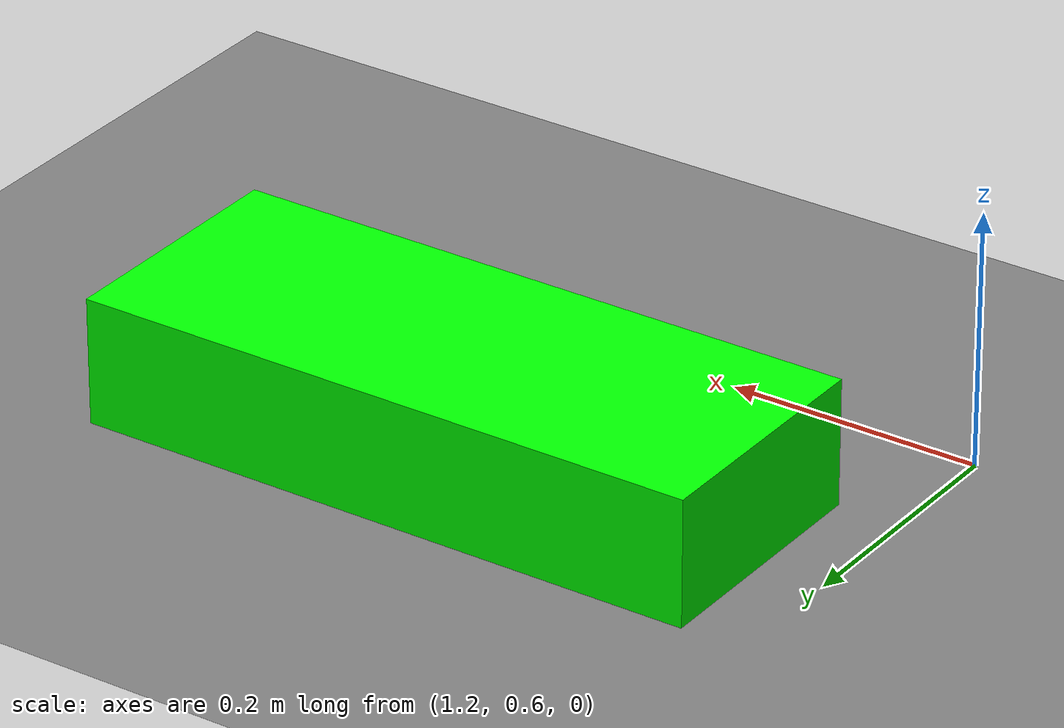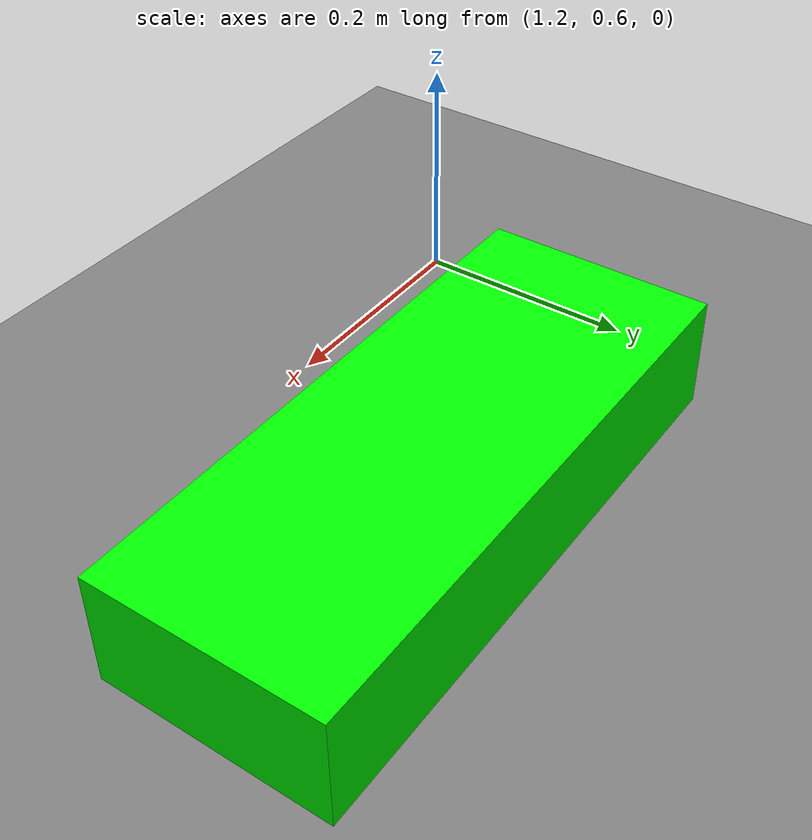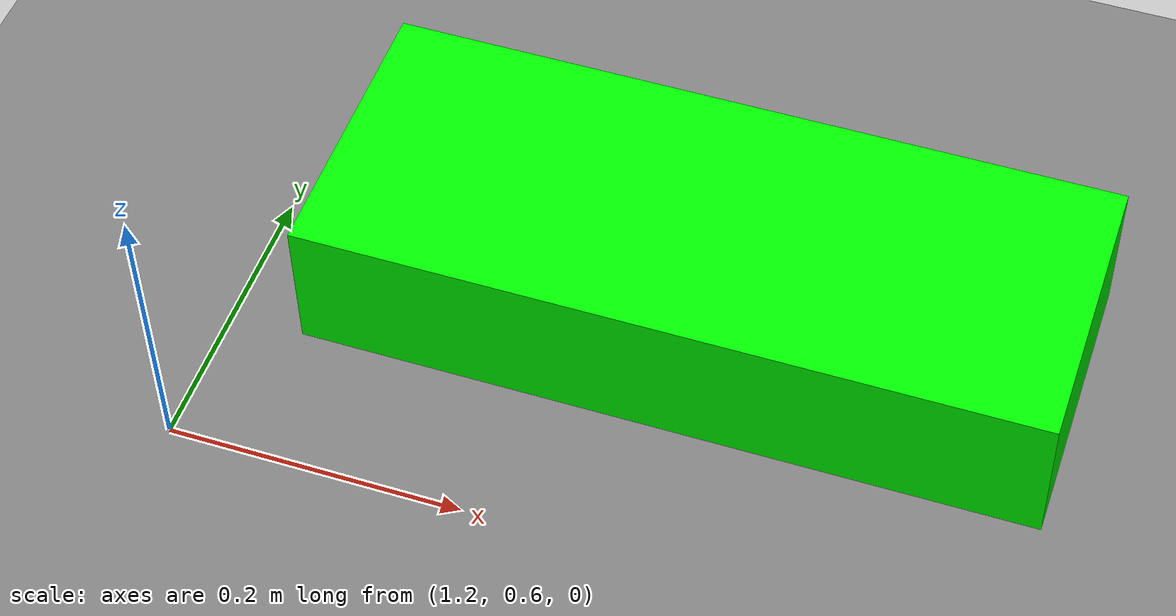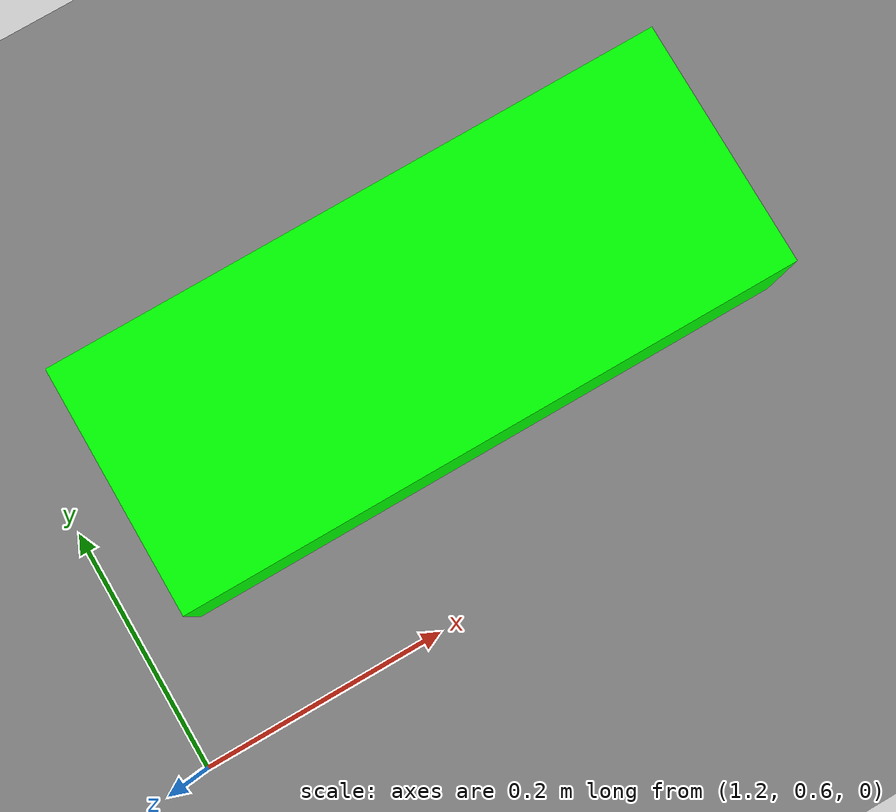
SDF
<?xml version="1.0" ?>
<sdf version="1.6">

  <world name="box_touch_world">

    <!-- SUN -->
    <light name="sun" type="directional">
      <cast_shadows>true</cast_shadows>
      <pose>0 0 10 0 0 0</pose>
      <diffuse>1 1 1 1</diffuse>
      <specular>0.2 0.2 0.2 1</specular>
      <direction>-0.5 0.5 -1</direction>
    </light>

    <!-- GROUND -->
    <model name="ground">
      <static>true</static>

      <link name="link">

        <collision name="collision">
          <geometry>
            <plane>
              <normal>0 0 1</normal>
              <size>100 100</size>
            </plane>
          </geometry>
        </collision>

        <visual name="visual">
          <geometry>
            <plane>
              <normal>0 0 1</normal>
              <size>100 100</size>
            </plane>
          </geometry>

          <material>
            <ambient>0.5 0.5 0.5 1</ambient>
            <diffuse>0.5 0.5 0.5 1</diffuse>
          </material>
        </visual>

      </link>
    </model>

    <!-- TARGET BOX -->
    <model name="target_box">
      <static>true</static>

      <!-- Box COM -->
      <pose>1.5 0.8 0.05 0 0 0</pose>

      <link name="box_link">

        <!-- COLLISION -->
        <collision name="collision">
          <geometry>
            <box>
              <size>0.50 0.20 0.10</size>
            </box>
          </geometry>
        </collision>

        <!-- VISUAL -->
        <visual name="visual">

          <geometry>
            <box>
              <size>0.50 0.20 0.10</size>
            </box>
          </geometry>

          <!-- GREEN -->
          <material>
            <ambient>0 0.8 0 1</ambient>
            <diffuse>0 1 0 1</diffuse>
            <specular>0.1 0.1 0.1 1</specular>
          </material>

        </visual>

      </link>
    </model>

  </world>

</sdf>
